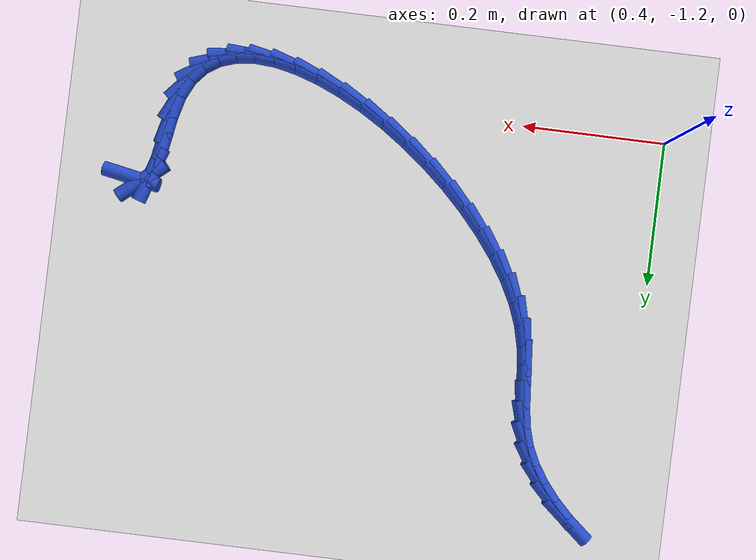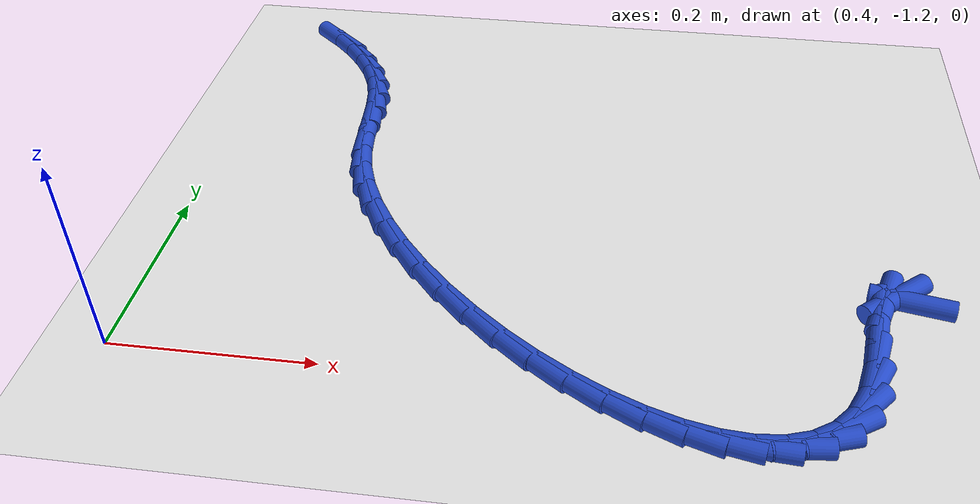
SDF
<sdf version="1.6">
 <world name="default">
  <model name="ground_plane">
   <static>1</static>
   <link name="link">
    <collision name="collision">
     <geometry><plane><normal>0 0 1</normal><size>100 100</size></plane></geometry>
     <surface><friction><ode><mu>100</mu><mu2>50</mu2></ode></friction></surface>
    </collision>
    <visual name="visual">
     <cast_shadows>0</cast_shadows>
     <geometry><plane><normal>0 0 1</normal><size>100 100</size></plane></geometry>
     <material>
      <script><uri>file://media/materials/scripts/gazebo.material</uri><name>Gazebo/WhiteGlow</name></script>
     </material>
    </visual>
   </link>
  </model>
  <model name="line">
   <link name="link_223">
    <pose>1.1320426745658516 -1.0623944313117413 0.01 0 1.57 -0.18721409280531037</pose>
    <collision name="collision">
     <geometry><cylinder><radius>0.01</radius><length>0.08</length></cylinder></geometry>
    </collision>
    <visual name="visual">
     <material>
      <script><name>Gazebo/Blue</name><uri>file://media/materials/scripts/gazebo.material</uri></script>
     </material>
     <geometry><cylinder><radius>0.01</radius><length>0.08</length></cylinder></geometry>
    </visual>
   </link>
   <link name="link_224">
    <pose>1.1169567911935312 -1.0595366757990767 0.01 0 1.57 0.6944372117350419</pose>
    <collision name="collision">
     <geometry><cylinder><radius>0.01</radius><length>0.08</length></cylinder></geometry>
    </collision>
    <visual name="visual">
     <material>
      <script><name>Gazebo/Blue</name><uri>file://media/materials/scripts/gazebo.material</uri></script>
     </material>
     <geometry><cylinder><radius>0.01</radius><length>0.08</length></cylinder></geometry>
    </visual>
   </link>
   <link name="link_225">
    <pose>1.1059393526061394 -1.0687122556283482 0.01 0 1.57 1.2487058580350612</pose>
    <collision name="collision">
     <geometry><cylinder><radius>0.01</radius><length>0.08</length></cylinder></geometry>
    </collision>
    <visual name="visual">
     <material>
      <script><name>Gazebo/Blue</name><uri>file://media/materials/scripts/gazebo.material</uri></script>
     </material>
     <geometry><cylinder><radius>0.01</radius><length>0.08</length></cylinder></geometry>
    </visual>
   </link>
   <link name="link_226">
    <pose>1.0988245938351149 -1.0900323724899557 0.01 0 1.57 1.3953012274303036</pose>
    <collision name="collision">
     <geometry><cylinder><radius>0.01</radius><length>0.08</length></cylinder></geometry>
    </collision>
    <visual name="visual">
     <material>
      <script><name>Gazebo/Blue</name><uri>file://media/materials/scripts/gazebo.material</uri></script>
     </material>
     <geometry><cylinder><radius>0.01</radius><length>0.08</length></cylinder></geometry>
    </visual>
   </link>
   <link name="link_227">
    <pose>1.0936390847284774 -1.1192762895365655 0.01 0 1.57 1.4028469776875312</pose>
    <collision name="collision">
     <geometry><cylinder><radius>0.01</radius><length>0.08</length></cylinder></geometry>
    </collision>
    <visual name="visual">
     <material>
      <script><name>Gazebo/Blue</name><uri>file://media/materials/scripts/gazebo.material</uri></script>
     </material>
     <geometry><cylinder><radius>0.01</radius><length>0.08</length></cylinder></geometry>
    </visual>
   </link>
   <link name="link_228">
    <pose>1.0881559970772334 -1.1516160198511773 0.01 0 1.57 1.314913267788448</pose>
    <collision name="collision">
     <geometry><cylinder><radius>0.01</radius><length>0.08</length></cylinder></geometry>
    </collision>
    <visual name="visual">
     <material>
      <script><name>Gazebo/Blue</name><uri>file://media/materials/scripts/gazebo.material</uri></script>
     </material>
     <geometry><cylinder><radius>0.01</radius><length>0.08</length></cylinder></geometry>
    </visual>
   </link>
   <link name="link_229">
    <pose>1.0801485060144091 -1.182223582933181 0.01 0 1.57 1.1135532206260053</pose>
    <collision name="collision">
     <geometry><cylinder><radius>0.01</radius><length>0.08</length></cylinder></geometry>
    </collision>
    <visual name="visual">
     <material>
      <script><name>Gazebo/Blue</name><uri>file://media/materials/scripts/gazebo.material</uri></script>
     </material>
     <geometry><cylinder><radius>0.01</radius><length>0.08</length></cylinder></geometry>
    </visual>
   </link>
   <link name="link_230">
    <pose>1.0678664386955457 -1.2071861289464159 0.01 0 1.57 0.851709478136307</pose>
    <collision name="collision">
     <geometry><cylinder><radius>0.01</radius><length>0.08</length></cylinder></geometry>
    </collision>
    <visual name="visual">
     <material>
      <script><name>Gazebo/Blue</name><uri>file://media/materials/scripts/gazebo.material</uri></script>
     </material>
     <geometry><cylinder><radius>0.01</radius><length>0.08</length></cylinder></geometry>
    </visual>
   </link>
   <link name="link_231">
    <pose>1.0513578702757902 -1.226043288709364 0.01 0 1.57 0.5740990628195919</pose>
    <collision name="collision">
     <geometry><cylinder><radius>0.01</radius><length>0.08</length></cylinder></geometry>
    </collision>
    <visual name="visual">
     <material>
      <script><name>Gazebo/Blue</name><uri>file://media/materials/scripts/gazebo.material</uri></script>
     </material>
     <geometry><cylinder><radius>0.01</radius><length>0.08</length></cylinder></geometry>
    </visual>
   </link>
   <link name="link_232">
    <pose>1.0310948709476326 -1.2391487268469703 0.01 0 1.57 0.316348539871859</pose>
    <collision name="collision">
     <geometry><cylinder><radius>0.01</radius><length>0.08</length></cylinder></geometry>
    </collision>
    <visual name="visual">
     <material>
      <script><name>Gazebo/Blue</name><uri>file://media/materials/scripts/gazebo.material</uri></script>
     </material>
     <geometry><cylinder><radius>0.01</radius><length>0.08</length></cylinder></geometry>
    </visual>
   </link>
   <link name="link_233">
    <pose>1.0075495109035635 -1.2468561079841791 0.01 0 1.57 0.10069876846238915</pose>
    <collision name="collision">
     <geometry><cylinder><radius>0.01</radius><length>0.08</length></cylinder></geometry>
    </collision>
    <visual name="visual">
     <material>
      <script><name>Gazebo/Blue</name><uri>file://media/materials/scripts/gazebo.material</uri></script>
     </material>
     <geometry><cylinder><radius>0.01</radius><length>0.08</length></cylinder></geometry>
    </visual>
   </link>
   <link name="link_234">
    <pose>0.9811938603360696 -1.2495190967459358 0.01 0 1.57 -0.07055073140265826</pose>
    <collision name="collision">
     <geometry><cylinder><radius>0.01</radius><length>0.08</length></cylinder></geometry>
    </collision>
    <visual name="visual">
     <material>
      <script><name>Gazebo/Blue</name><uri>file://media/materials/scripts/gazebo.material</uri></script>
     </material>
     <geometry><cylinder><radius>0.01</radius><length>0.08</length></cylinder></geometry>
    </visual>
   </link>
   <link name="link_235">
    <pose>0.952499989437641 -1.247491357757184 0.01 0 1.57 -0.2053367762005946</pose>
    <collision name="collision">
     <geometry><cylinder><radius>0.01</radius><length>0.08</length></cylinder></geometry>
    </collision>
    <visual name="visual">
     <material>
      <script><name>Gazebo/Blue</name><uri>file://media/materials/scripts/gazebo.material</uri></script>
     </material>
     <geometry><cylinder><radius>0.01</radius><length>0.08</length></cylinder></geometry>
    </visual>
   </link>
   <link name="link_236">
    <pose>0.921939968400767 -1.241126555642869 0.01 0 1.57 -0.3131875886077768</pose>
    <collision name="collision">
     <geometry><cylinder><radius>0.01</radius><length>0.08</length></cylinder></geometry>
    </collision>
    <visual name="visual">
     <material>
      <script><name>Gazebo/Blue</name><uri>file://media/materials/scripts/gazebo.material</uri></script>
     </material>
     <geometry><cylinder><radius>0.01</radius><length>0.08</length></cylinder></geometry>
    </visual>
   </link>
   <link name="link_237">
    <pose>0.8899858674179367 -1.230778355027935 0.01 0 1.57 -0.4020145912303218</pose>
    <collision name="collision">
     <geometry><cylinder><radius>0.01</radius><length>0.08</length></cylinder></geometry>
    </collision>
    <visual name="visual">
     <material>
      <script><name>Gazebo/Blue</name><uri>file://media/materials/scripts/gazebo.material</uri></script>
     </material>
     <geometry><cylinder><radius>0.01</radius><length>0.08</length></cylinder></geometry>
    </visual>
   </link>
   <link name="link_238">
    <pose>0.8571097566816391 -1.2168004205373268 0.01 0 1.57 -0.477733342379155</pose>
    <collision name="collision">
     <geometry><cylinder><radius>0.01</radius><length>0.08</length></cylinder></geometry>
    </collision>
    <visual name="visual">
     <material>
      <script><name>Gazebo/Blue</name><uri>file://media/materials/scripts/gazebo.material</uri></script>
     </material>
     <geometry><cylinder><radius>0.01</radius><length>0.08</length></cylinder></geometry>
    </visual>
   </link>
   <link name="link_239">
    <pose>0.8237837063843638 -1.199546416795989 0.01 0 1.57 -0.5446929288537381</pose>
    <collision name="collision">
     <geometry><cylinder><radius>0.01</radius><length>0.08</length></cylinder></geometry>
    </collision>
    <visual name="visual">
     <material>
      <script><name>Gazebo/Blue</name><uri>file://media/materials/scripts/gazebo.material</uri></script>
     </material>
     <geometry><cylinder><radius>0.01</radius><length>0.08</length></cylinder></geometry>
    </visual>
   </link>
   <link name="link_240">
    <pose>0.7904797867185996 -1.179370008428866 0.01 0 1.57 -0.6061774875490125</pose>
    <collision name="collision">
     <geometry><cylinder><radius>0.01</radius><length>0.08</length></cylinder></geometry>
    </collision>
    <visual name="visual">
     <material>
      <script><name>Gazebo/Blue</name><uri>file://media/materials/scripts/gazebo.material</uri></script>
     </material>
     <geometry><cylinder><radius>0.01</radius><length>0.08</length></cylinder></geometry>
    </visual>
   </link>
   <link name="link_241">
    <pose>0.7576700678768358 -1.1566248600609026 0.01 0 1.57 -0.6648103989439934</pose>
    <collision name="collision">
     <geometry><cylinder><radius>0.01</radius><length>0.08</length></cylinder></geometry>
    </collision>
    <visual name="visual">
     <material>
      <script><name>Gazebo/Blue</name><uri>file://media/materials/scripts/gazebo.material</uri></script>
     </material>
     <geometry><cylinder><radius>0.01</radius><length>0.08</length></cylinder></geometry>
    </visual>
   </link>
   <link name="link_242">
    <pose>0.7258266200515617 -1.131664636317044 0.01 0 1.57 -0.7228609771058466</pose>
    <collision name="collision">
     <geometry><cylinder><radius>0.01</radius><length>0.08</length></cylinder></geometry>
    </collision>
    <visual name="visual">
     <material>
      <script><name>Gazebo/Blue</name><uri>file://media/materials/scripts/gazebo.material</uri></script>
     </material>
     <geometry><cylinder><radius>0.01</radius><length>0.08</length></cylinder></geometry>
    </visual>
   </link>
   <link name="link_243">
    <pose>0.6954215134352661 -1.1048430018222335 0.01 0 1.57 -0.7824889365390437</pose>
    <collision name="collision">
     <geometry><cylinder><radius>0.01</radius><length>0.08</length></cylinder></geometry>
    </collision>
    <visual name="visual">
     <material>
      <script><name>Gazebo/Blue</name><uri>file://media/materials/scripts/gazebo.material</uri></script>
     </material>
     <geometry><cylinder><radius>0.01</radius><length>0.08</length></cylinder></geometry>
    </visual>
   </link>
   <link name="link_244">
    <pose>0.6669268182204385 -1.0765136212014168 0.01 0 1.57 -0.845962685109809</pose>
    <collision name="collision">
     <geometry><cylinder><radius>0.01</radius><length>0.08</length></cylinder></geometry>
    </collision>
    <visual name="visual">
     <material>
      <script><name>Gazebo/Blue</name><uri>file://media/materials/scripts/gazebo.material</uri></script>
     </material>
     <geometry><cylinder><radius>0.01</radius><length>0.08</length></cylinder></geometry>
    </visual>
   </link>
   <link name="link_245">
    <pose>0.640814604599568 -1.047030159079538 0.01 0 1.57 -0.9158818146749024</pose>
    <collision name="collision">
     <geometry><cylinder><radius>0.01</radius><length>0.08</length></cylinder></geometry>
    </collision>
    <visual name="visual">
     <material>
      <script><name>Gazebo/Blue</name><uri>file://media/materials/scripts/gazebo.material</uri></script>
     </material>
     <geometry><cylinder><radius>0.01</radius><length>0.08</length></cylinder></geometry>
    </visual>
   </link>
   <link name="link_246">
    <pose>0.6175569427651437 -1.0167462800815419 0.01 0 1.57 -0.9954253326236916</pose>
    <collision name="collision">
     <geometry><cylinder><radius>0.01</radius><length>0.08</length></cylinder></geometry>
    </collision>
    <visual name="visual">
     <material>
      <script><name>Gazebo/Blue</name><uri>file://media/materials/scripts/gazebo.material</uri></script>
     </material>
     <geometry><cylinder><radius>0.01</radius><length>0.08</length></cylinder></geometry>
    </visual>
   </link>
   <link name="link_247">
    <pose>0.5976259029096546 -0.9860156488323728 0.01 0 1.57 -1.0886244745299873</pose>
    <collision name="collision">
     <geometry><cylinder><radius>0.01</radius><length>0.08</length></cylinder></geometry>
    </collision>
    <visual name="visual">
     <material>
      <script><name>Gazebo/Blue</name><uri>file://media/materials/scripts/gazebo.material</uri></script>
     </material>
     <geometry><cylinder><radius>0.01</radius><length>0.08</length></cylinder></geometry>
    </visual>
   </link>
   <link name="link_248">
    <pose>0.5814935552255907 -0.9551919299569769 0.01 0 1.57 -1.2005896233454254</pose>
    <collision name="collision">
     <geometry><cylinder><radius>0.01</radius><length>0.08</length></cylinder></geometry>
    </collision>
    <visual name="visual">
     <material>
      <script><name>Gazebo/Blue</name><uri>file://media/materials/scripts/gazebo.material</uri></script>
     </material>
     <geometry><cylinder><radius>0.01</radius><length>0.08</length></cylinder></geometry>
    </visual>
   </link>
   <link name="link_249">
    <pose>0.56963196990544 -0.9246287880802966 0.01 0 1.57 -1.3303121464009287</pose>
    <collision name="collision">
     <geometry><cylinder><radius>0.01</radius><length>0.08</length></cylinder></geometry>
    </collision>
    <visual name="visual">
     <material>
      <script><name>Gazebo/Blue</name><uri>file://media/materials/scripts/gazebo.material</uri></script>
     </material>
     <geometry><cylinder><radius>0.01</radius><length>0.08</length></cylinder></geometry>
    </visual>
   </link>
   <link name="link_250">
    <pose>0.5622795803393138 -0.8946471733775752 0.01 0 1.57 -1.4343835775066907</pose>
    <collision name="collision">
     <geometry><cylinder><radius>0.01</radius><length>0.08</length></cylinder></geometry>
    </collision>
    <visual name="visual">
     <material>
      <script><name>Gazebo/Blue</name><uri>file://media/materials/scripts/gazebo.material</uri></script>
     </material>
     <geometry><cylinder><radius>0.01</radius><length>0.08</length></cylinder></geometry>
    </visual>
   </link>
   <link name="link_251">
    <pose>0.5582608487572264 -0.8653700480019378 0.01 0 1.57 -1.4872089197933356</pose>
    <collision name="collision">
     <geometry><cylinder><radius>0.01</radius><length>0.08</length></cylinder></geometry>
    </collision>
    <visual name="visual">
     <material>
      <script><name>Gazebo/Blue</name><uri>file://media/materials/scripts/gazebo.material</uri></script>
     </material>
     <geometry><cylinder><radius>0.01</radius><length>0.08</length></cylinder></geometry>
    </visual>
   </link>
   <link name="link_252">
    <pose>0.5558710523199898 -0.8368462761983323 0.01 0 1.57 -1.4820560209285256</pose>
    <collision name="collision">
     <geometry><cylinder><radius>0.01</radius><length>0.08</length></cylinder></geometry>
    </collision>
    <visual name="visual">
     <material>
      <script><name>Gazebo/Blue</name><uri>file://media/materials/scripts/gazebo.material</uri></script>
     </material>
     <geometry><cylinder><radius>0.01</radius><length>0.08</length></cylinder></geometry>
    </visual>
   </link>
   <link name="link_253">
    <pose>0.553404543797517 -0.809124592776021 0.01 0 1.57 -1.4139729520430027</pose>
    <collision name="collision">
     <geometry><cylinder><radius>0.01</radius><length>0.08</length></cylinder></geometry>
    </collision>
    <visual name="visual">
     <material>
      <script><name>Gazebo/Blue</name><uri>file://media/materials/scripts/gazebo.material</uri></script>
     </material>
     <geometry><cylinder><radius>0.01</radius><length>0.08</length></cylinder></geometry>
    </visual>
   </link>
   <link name="link_254">
    <pose>0.5491556759597215 -0.7822537325442667 0.01 0 1.57 -1.282513324446455</pose>
    <collision name="collision">
     <geometry><cylinder><radius>0.01</radius><length>0.08</length></cylinder></geometry>
    </collision>
    <visual name="visual">
     <material>
      <script><name>Gazebo/Blue</name><uri>file://media/materials/scripts/gazebo.material</uri></script>
     </material>
     <geometry><cylinder><radius>0.01</radius><length>0.08</length></cylinder></geometry>
    </visual>
   </link>
   <link name="link_255">
    <pose>0.5414544874625575 -0.7562839186074679 0.01 0 1.57 -1.1292713129960807</pose>
    <collision name="collision">
     <geometry><cylinder><radius>0.01</radius><length>0.08</length></cylinder></geometry>
    </collision>
    <visual name="visual">
     <material>
      <script><name>Gazebo/Blue</name><uri>file://media/materials/scripts/gazebo.material</uri></script>
     </material>
     <geometry><cylinder><radius>0.01</radius><length>0.08</length></cylinder></geometry>
    </visual>
   </link>
   <link name="link_256">
    <pose>0.52964968031805 -0.7313078578608438 0.01 0 1.57 -0.9967843549226758</pose>
    <collision name="collision">
     <geometry><cylinder><radius>0.01</radius><length>0.08</length></cylinder></geometry>
    </collision>
    <visual name="visual">
     <material>
      <script><name>Gazebo/Blue</name><uri>file://media/materials/scripts/gazebo.material</uri></script>
     </material>
     <geometry><cylinder><radius>0.01</radius><length>0.08</length></cylinder></geometry>
    </visual>
   </link>
   <link name="link_257">
    <pose>0.5142324381010656 -0.7074659048816898 0.01 0 1.57 -0.8846502476947143</pose>
    <collision name="collision">
     <geometry><cylinder><radius>0.01</radius><length>0.08</length></cylinder></geometry>
    </collision>
    <visual name="visual">
     <material>
      <script><name>Gazebo/Blue</name><uri>file://media/materials/scripts/gazebo.material</uri></script>
     </material>
     <geometry><cylinder><radius>0.01</radius><length>0.08</length></cylinder></geometry>
    </visual>
   </link>
   <link name="link_258">
    <pose>0.49575449610815225 -0.6849009395827439 0.01 0 1.57 -0.7891528029744735</pose>
    <collision name="collision">
     <geometry><cylinder><radius>0.01</radius><length>0.08</length></cylinder></geometry>
    </collision>
    <visual name="visual">
     <material>
      <script><name>Gazebo/Blue</name><uri>file://media/materials/scripts/gazebo.material</uri></script>
     </material>
     <geometry><cylinder><radius>0.01</radius><length>0.08</length></cylinder></geometry>
    </visual>
   </link>
   <link name="link_259">
    <pose>0.4747675896358581 -0.6637558418767444 0.01 0 1.57 -0.7065106475450393</pose>
    <collision name="collision">
     <geometry><cylinder><radius>0.01</radius><length>0.08</length></cylinder></geometry>
    </collision>
    <visual name="visual">
     <material>
      <script><name>Gazebo/Blue</name><uri>file://media/materials/scripts/gazebo.material</uri></script>
     </material>
     <geometry><cylinder><radius>0.01</radius><length>0.08</length></cylinder></geometry>
    </visual>
   </link>
  </model>
 </world>
</sdf>
